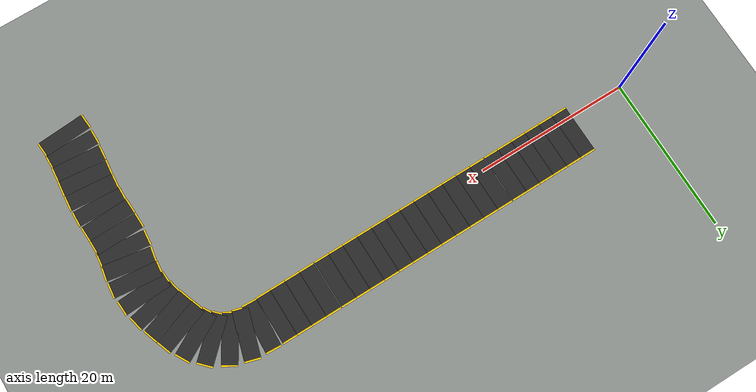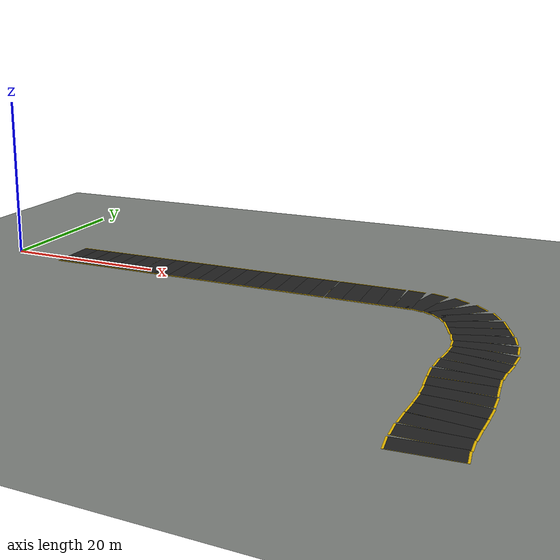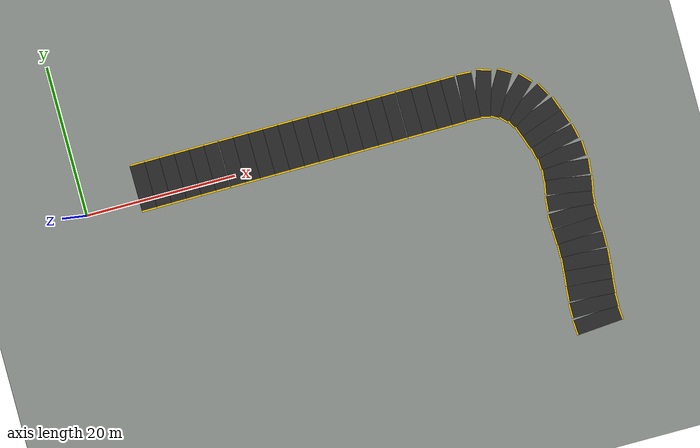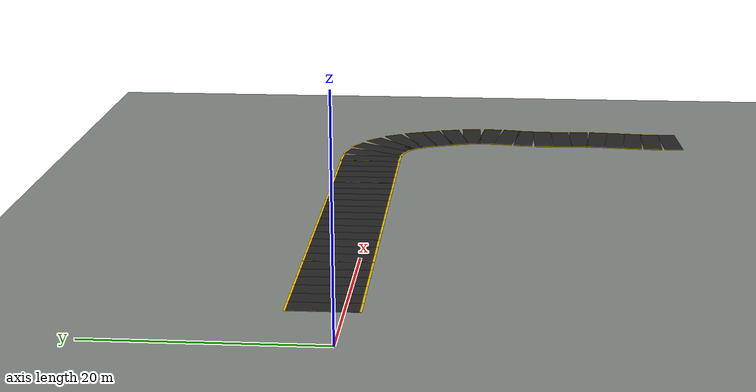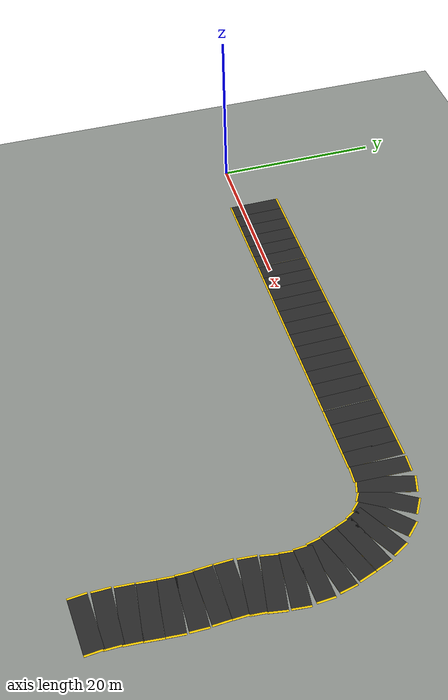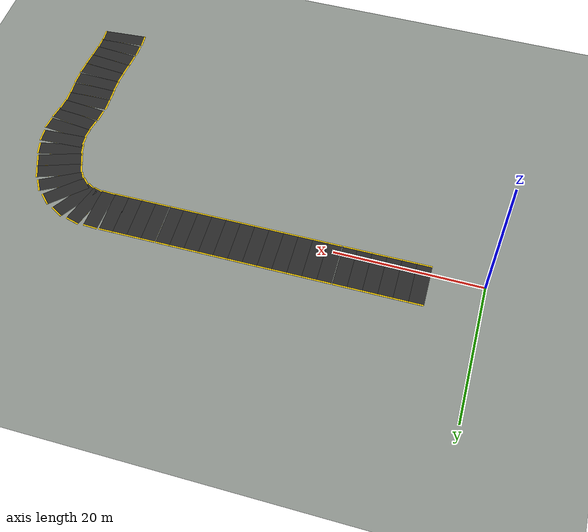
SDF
<sdf version="1.7">
 <world name="custom_road_world">
  <model name="ground_plane">
   <static>true</static>
   <pose>25 -32 -0.005 0 0 0</pose>
   <link name="link">
    <collision name="collision">
     <geometry><plane><normal>0 0 1</normal><size>180 180</size></plane></geometry>
    </collision>
    <visual name="visual">
     <geometry><plane><normal>0 0 1</normal><size>180 180</size></plane></geometry>
     <material>
      <ambient>0.54 0.56 0.54 1</ambient>
      <diffuse>0.54 0.56 0.54 1</diffuse>
      <specular>0.04 0.04 0.04 1</specular>
     </material>
    </visual>
   </link>
  </model>
  <model name="elliptical_road">
   <static>true</static>
   <link name="seg_1">
    <pose>8.089 1.776 0.01 0 0 0.006</pose>
    <visual name="yellow_base_1">
     <pose>0 0 0.001 0 0 0</pose>
     <geometry><box><size>2.0 6.4 0.02</size></box></geometry>
     <material>
      <ambient>1.0 0.8 0.0 1.0</ambient>
      <diffuse>1.0 0.8 0.0 1.0</diffuse>
      <specular>0.1 0.1 0.1 1.0</specular>
     </material>
    </visual>
    <visual name="asphalt_top_1">
     <pose>0 0 0.002 0 0 0</pose>
     <geometry><box><size>2.0 6.0 0.02</size></box></geometry>
     <material>
      <ambient>0.15 0.15 0.15 1.0</ambient>
      <diffuse>0.15 0.15 0.15 1.0</diffuse>
      <specular>0.05 0.05 0.05 1.0</specular>
     </material>
    </visual>
    <visual name="center_line_1">
     <pose>0 0 0.003 0 0 0</pose>
     <geometry><box><size>1.0 0.15 0.001</size></box></geometry>
     <material><ambient>0.9 0.9 0.9 1</ambient><diffuse>0.9 0.9 0.9 1</diffuse></material>
    </visual>
    <collision name="collision_1">
     <pose>0 0 0.002 0 0 0</pose>
     <geometry><box><size>2.0 6.0 0.02</size></box></geometry>
    </collision>
   </link>
   <link name="seg_2">
    <pose>10.089 1.789 0.01 0 0 0.006</pose>
    <visual name="yellow_base_2">
     <pose>0 0 0.001 0 0 0</pose>
     <geometry><box><size>2.0 6.4 0.02</size></box></geometry>
     <material>
      <ambient>1.0 0.8 0.0 1.0</ambient>
      <diffuse>1.0 0.8 0.0 1.0</diffuse>
      <specular>0.1 0.1 0.1 1.0</specular>
     </material>
    </visual>
    <visual name="asphalt_top_2">
     <pose>0 0 0.002 0 0 0</pose>
     <geometry><box><size>2.0 6.0 0.02</size></box></geometry>
     <material>
      <ambient>0.15 0.15 0.15 1.0</ambient>
      <diffuse>0.15 0.15 0.15 1.0</diffuse>
      <specular>0.05 0.05 0.05 1.0</specular>
     </material>
    </visual>
    <visual name="center_line_2">
     <pose>0 0 0.003 0 0 0</pose>
     <geometry><box><size>1.0 0.15 0.001</size></box></geometry>
     <material><ambient>0.9 0.9 0.9 1</ambient><diffuse>0.9 0.9 0.9 1</diffuse></material>
    </visual>
    <collision name="collision_2">
     <pose>0 0 0.002 0 0 0</pose>
     <geometry><box><size>2.0 6.0 0.02</size></box></geometry>
    </collision>
   </link>
   <link name="seg_3">
    <pose>12.089 1.802 0.01 0 0 0.006</pose>
    <visual name="yellow_base_3">
     <pose>0 0 0.001 0 0 0</pose>
     <geometry><box><size>2.0 6.4 0.02</size></box></geometry>
     <material>
      <ambient>1.0 0.8 0.0 1.0</ambient>
      <diffuse>1.0 0.8 0.0 1.0</diffuse>
      <specular>0.1 0.1 0.1 1.0</specular>
     </material>
    </visual>
    <visual name="asphalt_top_3">
     <pose>0 0 0.002 0 0 0</pose>
     <geometry><box><size>2.0 6.0 0.02</size></box></geometry>
     <material>
      <ambient>0.15 0.15 0.15 1.0</ambient>
      <diffuse>0.15 0.15 0.15 1.0</diffuse>
      <specular>0.05 0.05 0.05 1.0</specular>
     </material>
    </visual>
    <visual name="center_line_3">
     <pose>0 0 0.003 0 0 0</pose>
     <geometry><box><size>1.0 0.15 0.001</size></box></geometry>
     <material><ambient>0.9 0.9 0.9 1</ambient><diffuse>0.9 0.9 0.9 1</diffuse></material>
    </visual>
    <collision name="collision_3">
     <pose>0 0 0.002 0 0 0</pose>
     <geometry><box><size>2.0 6.0 0.02</size></box></geometry>
    </collision>
   </link>
   <link name="seg_4">
    <pose>14.089 1.815 0.01 0 0 0.006</pose>
    <visual name="yellow_base_4">
     <pose>0 0 0.001 0 0 0</pose>
     <geometry><box><size>2.0 6.4 0.02</size></box></geometry>
     <material>
      <ambient>1.0 0.8 0.0 1.0</ambient>
      <diffuse>1.0 0.8 0.0 1.0</diffuse>
      <specular>0.1 0.1 0.1 1.0</specular>
     </material>
    </visual>
    <visual name="asphalt_top_4">
     <pose>0 0 0.002 0 0 0</pose>
     <geometry><box><size>2.0 6.0 0.02</size></box></geometry>
     <material>
      <ambient>0.15 0.15 0.15 1.0</ambient>
      <diffuse>0.15 0.15 0.15 1.0</diffuse>
      <specular>0.05 0.05 0.05 1.0</specular>
     </material>
    </visual>
    <visual name="center_line_4">
     <pose>0 0 0.003 0 0 0</pose>
     <geometry><box><size>1.0 0.15 0.001</size></box></geometry>
     <material><ambient>0.9 0.9 0.9 1</ambient><diffuse>0.9 0.9 0.9 1</diffuse></material>
    </visual>
    <collision name="collision_4">
     <pose>0 0 0.002 0 0 0</pose>
     <geometry><box><size>2.0 6.0 0.02</size></box></geometry>
    </collision>
   </link>
   <link name="seg_5">
    <pose>16.088 1.827 0.01 0 0 0.006</pose>
    <visual name="yellow_base_5">
     <pose>0 0 0.001 0 0 0</pose>
     <geometry><box><size>2.0 6.4 0.02</size></box></geometry>
     <material>
      <ambient>1.0 0.8 0.0 1.0</ambient>
      <diffuse>1.0 0.8 0.0 1.0</diffuse>
      <specular>0.1 0.1 0.1 1.0</specular>
     </material>
    </visual>
    <visual name="asphalt_top_5">
     <pose>0 0 0.002 0 0 0</pose>
     <geometry><box><size>2.0 6.0 0.02</size></box></geometry>
     <material>
      <ambient>0.15 0.15 0.15 1.0</ambient>
      <diffuse>0.15 0.15 0.15 1.0</diffuse>
      <specular>0.05 0.05 0.05 1.0</specular>
     </material>
    </visual>
    <visual name="center_line_5">
     <pose>0 0 0.003 0 0 0</pose>
     <geometry><box><size>1.0 0.15 0.001</size></box></geometry>
     <material><ambient>0.9 0.9 0.9 1</ambient><diffuse>0.9 0.9 0.9 1</diffuse></material>
    </visual>
    <collision name="collision_5">
     <pose>0 0 0.002 0 0 0</pose>
     <geometry><box><size>2.0 6.0 0.02</size></box></geometry>
    </collision>
   </link>
   <link name="seg_6">
    <pose>17.988 1.840 0.01 0 0 0.006</pose>
    <visual name="yellow_base_6">
     <pose>0 0 0.001 0 0 0</pose>
     <geometry><box><size>2.0 6.4 0.02</size></box></geometry>
     <material>
      <ambient>1.0 0.8 0.0 1.0</ambient>
      <diffuse>1.0 0.8 0.0 1.0</diffuse>
      <specular>0.1 0.1 0.1 1.0</specular>
     </material>
    </visual>
    <visual name="asphalt_top_6">
     <pose>0 0 0.002 0 0 0</pose>
     <geometry><box><size>2.0 6.0 0.02</size></box></geometry>
     <material>
      <ambient>0.15 0.15 0.15 1.0</ambient>
      <diffuse>0.15 0.15 0.15 1.0</diffuse>
      <specular>0.05 0.05 0.05 1.0</specular>
     </material>
    </visual>
    <visual name="center_line_6">
     <pose>0 0 0.003 0 0 0</pose>
     <geometry><box><size>1.0 0.15 0.001</size></box></geometry>
     <material><ambient>0.9 0.9 0.9 1</ambient><diffuse>0.9 0.9 0.9 1</diffuse></material>
    </visual>
    <collision name="collision_6">
     <pose>0 0 0.002 0 0 0</pose>
     <geometry><box><size>2.0 6.0 0.02</size></box></geometry>
    </collision>
   </link>
   <link name="seg_7">
    <pose>20.088 1.853 0.01 0 0 0.006</pose>
    <visual name="yellow_base_7">
     <pose>0 0 0.001 0 0 0</pose>
     <geometry><box><size>2.0 6.4 0.02</size></box></geometry>
     <material>
      <ambient>1.0 0.8 0.0 1.0</ambient>
      <diffuse>1.0 0.8 0.0 1.0</diffuse>
      <specular>0.1 0.1 0.1 1.0</specular>
     </material>
    </visual>
    <visual name="asphalt_top_7">
     <pose>0 0 0.002 0 0 0</pose>
     <geometry><box><size>2.0 6.0 0.02</size></box></geometry>
     <material>
      <ambient>0.15 0.15 0.15 1.0</ambient>
      <diffuse>0.15 0.15 0.15 1.0</diffuse>
      <specular>0.05 0.05 0.05 1.0</specular>
     </material>
    </visual>
    <visual name="center_line_7">
     <pose>0 0 0.003 0 0 0</pose>
     <geometry><box><size>1.0 0.15 0.001</size></box></geometry>
     <material><ambient>0.9 0.9 0.9 1</ambient><diffuse>0.9 0.9 0.9 1</diffuse></material>
    </visual>
    <collision name="collision_7">
     <pose>0 0 0.002 0 0 0</pose>
     <geometry><box><size>2.0 6.0 0.02</size></box></geometry>
    </collision>
   </link>
   <link name="seg_8">
    <pose>22.088 1.866 0.01 0 0 0.006</pose>
    <visual name="yellow_base_8">
     <pose>0 0 0.001 0 0 0</pose>
     <geometry><box><size>2.0 6.4 0.02</size></box></geometry>
     <material>
      <ambient>1.0 0.8 0.0 1.0</ambient>
      <diffuse>1.0 0.8 0.0 1.0</diffuse>
      <specular>0.1 0.1 0.1 1.0</specular>
     </material>
    </visual>
    <visual name="asphalt_top_8">
     <pose>0 0 0.002 0 0 0</pose>
     <geometry><box><size>2.0 6.0 0.02</size></box></geometry>
     <material>
      <ambient>0.15 0.15 0.15 1.0</ambient>
      <diffuse>0.15 0.15 0.15 1.0</diffuse>
      <specular>0.05 0.05 0.05 1.0</specular>
     </material>
    </visual>
    <visual name="center_line_8">
     <pose>0 0 0.003 0 0 0</pose>
     <geometry><box><size>1.0 0.15 0.001</size></box></geometry>
     <material><ambient>0.9 0.9 0.9 1</ambient><diffuse>0.9 0.9 0.9 1</diffuse></material>
    </visual>
    <collision name="collision_8">
     <pose>0 0 0.002 0 0 0</pose>
     <geometry><box><size>2.0 6.0 0.02</size></box></geometry>
    </collision>
   </link>
   <link name="seg_9">
    <pose>24.088 1.879 0.01 0 0 0.006</pose>
    <visual name="yellow_base_9">
     <pose>0 0 0.001 0 0 0</pose>
     <geometry><box><size>2.0 6.4 0.02</size></box></geometry>
     <material>
      <ambient>1.0 0.8 0.0 1.0</ambient>
      <diffuse>1.0 0.8 0.0 1.0</diffuse>
      <specular>0.1 0.1 0.1 1.0</specular>
     </material>
    </visual>
    <visual name="asphalt_top_9">
     <pose>0 0 0.002 0 0 0</pose>
     <geometry><box><size>2.0 6.0 0.02</size></box></geometry>
     <material>
      <ambient>0.15 0.15 0.15 1.0</ambient>
      <diffuse>0.15 0.15 0.15 1.0</diffuse>
      <specular>0.05 0.05 0.05 1.0</specular>
     </material>
    </visual>
    <visual name="center_line_9">
     <pose>0 0 0.003 0 0 0</pose>
     <geometry><box><size>1.0 0.15 0.001</size></box></geometry>
     <material><ambient>0.9 0.9 0.9 1</ambient><diffuse>0.9 0.9 0.9 1</diffuse></material>
    </visual>
    <collision name="collision_9">
     <pose>0 0 0.002 0 0 0</pose>
     <geometry><box><size>2.0 6.0 0.02</size></box></geometry>
    </collision>
   </link>
   <link name="seg_10">
    <pose>26.088 1.891 0.01 0 0 0.006</pose>
    <visual name="yellow_base_10">
     <pose>0 0 0.001 0 0 0</pose>
     <geometry><box><size>2.0 6.4 0.02</size></box></geometry>
     <material>
      <ambient>1.0 0.8 0.0 1.0</ambient>
      <diffuse>1.0 0.8 0.0 1.0</diffuse>
      <specular>0.1 0.1 0.1 1.0</specular>
     </material>
    </visual>
    <visual name="asphalt_top_10">
     <pose>0 0 0.002 0 0 0</pose>
     <geometry><box><size>2.0 6.0 0.02</size></box></geometry>
     <material>
      <ambient>0.15 0.15 0.15 1.0</ambient>
      <diffuse>0.15 0.15 0.15 1.0</diffuse>
      <specular>0.05 0.05 0.05 1.0</specular>
     </material>
    </visual>
    <visual name="center_line_10">
     <pose>0 0 0.003 0 0 0</pose>
     <geometry><box><size>1.0 0.15 0.001</size></box></geometry>
     <material><ambient>0.9 0.9 0.9 1</ambient><diffuse>0.9 0.9 0.9 1</diffuse></material>
    </visual>
    <collision name="collision_10">
     <pose>0 0 0.002 0 0 0</pose>
     <geometry><box><size>2.0 6.0 0.02</size></box></geometry>
    </collision>
   </link>
   <link name="seg_11">
    <pose>28.088 1.904 0.01 0 0 0.006</pose>
    <visual name="yellow_base_11">
     <pose>0 0 0.001 0 0 0</pose>
     <geometry><box><size>2.0 6.4 0.02</size></box></geometry>
     <material>
      <ambient>1.0 0.8 0.0 1.0</ambient>
      <diffuse>1.0 0.8 0.0 1.0</diffuse>
      <specular>0.1 0.1 0.1 1.0</specular>
     </material>
    </visual>
    <visual name="asphalt_top_11">
     <pose>0 0 0.002 0 0 0</pose>
     <geometry><box><size>2.0 6.0 0.02</size></box></geometry>
     <material>
      <ambient>0.15 0.15 0.15 1.0</ambient>
      <diffuse>0.15 0.15 0.15 1.0</diffuse>
      <specular>0.05 0.05 0.05 1.0</specular>
     </material>
    </visual>
    <visual name="center_line_11">
     <pose>0 0 0.003 0 0 0</pose>
     <geometry><box><size>1.0 0.15 0.001</size></box></geometry>
     <material><ambient>0.9 0.9 0.9 1</ambient><diffuse>0.9 0.9 0.9 1</diffuse></material>
    </visual>
    <collision name="collision_11">
     <pose>0 0 0.002 0 0 0</pose>
     <geometry><box><size>2.0 6.0 0.02</size></box></geometry>
    </collision>
   </link>
   <link name="seg_12">
    <pose>30.088 1.917 0.01 0 0 0.006</pose>
    <visual name="yellow_base_12">
     <pose>0 0 0.001 0 0 0</pose>
     <geometry><box><size>2.0 6.4 0.02</size></box></geometry>
     <material>
      <ambient>1.0 0.8 0.0 1.0</ambient>
      <diffuse>1.0 0.8 0.0 1.0</diffuse>
      <specular>0.1 0.1 0.1 1.0</specular>
     </material>
    </visual>
    <visual name="asphalt_top_12">
     <pose>0 0 0.002 0 0 0</pose>
     <geometry><box><size>2.0 6.0 0.02</size></box></geometry>
     <material>
      <ambient>0.15 0.15 0.15 1.0</ambient>
      <diffuse>0.15 0.15 0.15 1.0</diffuse>
      <specular>0.05 0.05 0.05 1.0</specular>
     </material>
    </visual>
    <visual name="center_line_12">
     <pose>0 0 0.003 0 0 0</pose>
     <geometry><box><size>1.0 0.15 0.001</size></box></geometry>
     <material><ambient>0.9 0.9 0.9 1</ambient><diffuse>0.9 0.9 0.9 1</diffuse></material>
    </visual>
    <collision name="collision_12">
     <pose>0 0 0.002 0 0 0</pose>
     <geometry><box><size>2.0 6.0 0.02</size></box></geometry>
    </collision>
   </link>
   <link name="seg_13">
    <pose>32.088 1.930 0.01 0 0 0.006</pose>
    <visual name="yellow_base_13">
     <pose>0 0 0.001 0 0 0</pose>
     <geometry><box><size>2.0 6.4 0.02</size></box></geometry>
     <material>
      <ambient>1.0 0.8 0.0 1.0</ambient>
      <diffuse>1.0 0.8 0.0 1.0</diffuse>
      <specular>0.1 0.1 0.1 1.0</specular>
     </material>
    </visual>
    <visual name="asphalt_top_13">
     <pose>0 0 0.002 0 0 0</pose>
     <geometry><box><size>2.0 6.0 0.02</size></box></geometry>
     <material>
      <ambient>0.15 0.15 0.15 1.0</ambient>
      <diffuse>0.15 0.15 0.15 1.0</diffuse>
      <specular>0.05 0.05 0.05 1.0</specular>
     </material>
    </visual>
    <visual name="center_line_13">
     <pose>0 0 0.003 0 0 0</pose>
     <geometry><box><size>1.0 0.15 0.001</size></box></geometry>
     <material><ambient>0.9 0.9 0.9 1</ambient><diffuse>0.9 0.9 0.9 1</diffuse></material>
    </visual>
    <collision name="collision_13">
     <pose>0 0 0.002 0 0 0</pose>
     <geometry><box><size>2.0 6.0 0.02</size></box></geometry>
    </collision>
   </link>
   <link name="seg_14">
    <pose>34.088 1.943 0.01 0 0 0.006</pose>
    <visual name="yellow_base_14">
     <pose>0 0 0.001 0 0 0</pose>
     <geometry><box><size>2.0 6.4 0.02</size></box></geometry>
     <material>
      <ambient>1.0 0.8 0.0 1.0</ambient>
      <diffuse>1.0 0.8 0.0 1.0</diffuse>
      <specular>0.1 0.1 0.1 1.0</specular>
     </material>
    </visual>
    <visual name="asphalt_top_14">
     <pose>0 0 0.002 0 0 0</pose>
     <geometry><box><size>2.0 6.0 0.02</size></box></geometry>
     <material>
      <ambient>0.15 0.15 0.15 1.0</ambient>
      <diffuse>0.15 0.15 0.15 1.0</diffuse>
      <specular>0.05 0.05 0.05 1.0</specular>
     </material>
    </visual>
    <visual name="center_line_14">
     <pose>0 0 0.003 0 0 0</pose>
     <geometry><box><size>1.0 0.15 0.001</size></box></geometry>
     <material><ambient>0.9 0.9 0.9 1</ambient><diffuse>0.9 0.9 0.9 1</diffuse></material>
    </visual>
    <collision name="collision_14">
     <pose>0 0 0.002 0 0 0</pose>
     <geometry><box><size>2.0 6.0 0.02</size></box></geometry>
    </collision>
   </link>
   <link name="seg_15">
    <pose>36.088 1.956 0.01 0 0 0.006</pose>
    <visual name="yellow_base_15">
     <pose>0 0 0.001 0 0 0</pose>
     <geometry><box><size>2.0 6.4 0.02</size></box></geometry>
     <material>
      <ambient>1.0 0.8 0.0 1.0</ambient>
      <diffuse>1.0 0.8 0.0 1.0</diffuse>
      <specular>0.1 0.1 0.1 1.0</specular>
     </material>
    </visual>
    <visual name="asphalt_top_15">
     <pose>0 0 0.002 0 0 0</pose>
     <geometry><box><size>2.0 6.0 0.02</size></box></geometry>
     <material>
      <ambient>0.15 0.15 0.15 1.0</ambient>
      <diffuse>0.15 0.15 0.15 1.0</diffuse>
      <specular>0.05 0.05 0.05 1.0</specular>
     </material>
    </visual>
    <visual name="center_line_15">
     <pose>0 0 0.003 0 0 0</pose>
     <geometry><box><size>1.0 0.15 0.001</size></box></geometry>
     <material><ambient>0.9 0.9 0.9 1</ambient><diffuse>0.9 0.9 0.9 1</diffuse></material>
    </visual>
    <collision name="collision_15">
     <pose>0 0 0.002 0 0 0</pose>
     <geometry><box><size>2.0 6.0 0.02</size></box></geometry>
    </collision>
   </link>
   <link name="seg_16">
    <pose>38.088 1.968 0.01 0 0 0.006</pose>
    <visual name="yellow_base_16">
     <pose>0 0 0.001 0 0 0</pose>
     <geometry><box><size>2.0 6.4 0.02</size></box></geometry>
     <material>
      <ambient>1.0 0.8 0.0 1.0</ambient>
      <diffuse>1.0 0.8 0.0 1.0</diffuse>
      <specular>0.1 0.1 0.1 1.0</specular>
     </material>
    </visual>
    <visual name="asphalt_top_16">
     <pose>0 0 0.002 0 0 0</pose>
     <geometry><box><size>2.0 6.0 0.02</size></box></geometry>
     <material>
      <ambient>0.15 0.15 0.15 1.0</ambient>
      <diffuse>0.15 0.15 0.15 1.0</diffuse>
      <specular>0.05 0.05 0.05 1.0</specular>
     </material>
    </visual>
    <visual name="center_line_16">
     <pose>0 0 0.003 0 0 0</pose>
     <geometry><box><size>1.0 0.15 0.001</size></box></geometry>
     <material><ambient>0.9 0.9 0.9 1</ambient><diffuse>0.9 0.9 0.9 1</diffuse></material>
    </visual>
    <collision name="collision_16">
     <pose>0 0 0.002 0 0 0</pose>
     <geometry><box><size>2.0 6.0 0.02</size></box></geometry>
    </collision>
   </link>
   <link name="seg_17">
    <pose>40.088 1.981 0.01 0 0 0.006</pose>
    <visual name="yellow_base_17">
     <pose>0 0 0.001 0 0 0</pose>
     <geometry><box><size>2.0 6.4 0.02</size></box></geometry>
     <material>
      <ambient>1.0 0.8 0.0 1.0</ambient>
      <diffuse>1.0 0.8 0.0 1.0</diffuse>
      <specular>0.1 0.1 0.1 1.0</specular>
     </material>
    </visual>
    <visual name="asphalt_top_17">
     <pose>0 0 0.002 0 0 0</pose>
     <geometry><box><size>2.0 6.0 0.02</size></box></geometry>
     <material>
      <ambient>0.15 0.15 0.15 1.0</ambient>
      <diffuse>0.15 0.15 0.15 1.0</diffuse>
      <specular>0.05 0.05 0.05 1.0</specular>
     </material>
    </visual>
    <visual name="center_line_17">
     <pose>0 0 0.003 0 0 0</pose>
     <geometry><box><size>1.0 0.15 0.001</size></box></geometry>
     <material><ambient>0.9 0.9 0.9 1</ambient><diffuse>0.9 0.9 0.9 1</diffuse></material>
    </visual>
    <collision name="collision_17">
     <pose>0 0 0.002 0 0 0</pose>
     <geometry><box><size>2.0 6.0 0.02</size></box></geometry>
    </collision>
   </link>
   <link name="seg_18">
    <pose>41.988 1.993 0.01 0 0 0.006</pose>
    <visual name="yellow_base_18">
     <pose>0 0 0.001 0 0 0</pose>
     <geometry><box><size>2.0 6.4 0.02</size></box></geometry>
     <material>
      <ambient>1.0 0.8 0.0 1.0</ambient>
      <diffuse>1.0 0.8 0.0 1.0</diffuse>
      <specular>0.1 0.1 0.1 1.0</specular>
     </material>
    </visual>
    <visual name="asphalt_top_18">
     <pose>0 0 0.002 0 0 0</pose>
     <geometry><box><size>2.0 6.0 0.02</size></box></geometry>
     <material>
      <ambient>0.15 0.15 0.15 1.0</ambient>
      <diffuse>0.15 0.15 0.15 1.0</diffuse>
      <specular>0.05 0.05 0.05 1.0</specular>
     </material>
    </visual>
    <visual name="center_line_18">
     <pose>0 0 0.003 0 0 0</pose>
     <geometry><box><size>1.0 0.15 0.001</size></box></geometry>
     <material><ambient>0.9 0.9 0.9 1</ambient><diffuse>0.9 0.9 0.9 1</diffuse></material>
    </visual>
    <collision name="collision_18">
     <pose>0 0 0.002 0 0 0</pose>
     <geometry><box><size>2.0 6.0 0.02</size></box></geometry>
    </collision>
   </link>
   <link name="seg_19">
    <pose>44.088 2.007 0.01 0 0 0.006</pose>
    <visual name="yellow_base_19">
     <pose>0 0 0.001 0 0 0</pose>
     <geometry><box><size>2.0 6.4 0.02</size></box></geometry>
     <material>
      <ambient>1.0 0.8 0.0 1.0</ambient>
      <diffuse>1.0 0.8 0.0 1.0</diffuse>
      <specular>0.1 0.1 0.1 1.0</specular>
     </material>
    </visual>
    <visual name="asphalt_top_19">
     <pose>0 0 0.002 0 0 0</pose>
     <geometry><box><size>2.0 6.0 0.02</size></box></geometry>
     <material>
      <ambient>0.15 0.15 0.15 1.0</ambient>
      <diffuse>0.15 0.15 0.15 1.0</diffuse>
      <specular>0.05 0.05 0.05 1.0</specular>
     </material>
    </visual>
    <visual name="center_line_19">
     <pose>0 0 0.003 0 0 0</pose>
     <geometry><box><size>1.0 0.15 0.001</size></box></geometry>
     <material><ambient>0.9 0.9 0.9 1</ambient><diffuse>0.9 0.9 0.9 1</diffuse></material>
    </visual>
    <collision name="collision_19">
     <pose>0 0 0.002 0 0 0</pose>
     <geometry><box><size>2.0 6.0 0.02</size></box></geometry>
    </collision>
   </link>
   <link name="seg_20">
    <pose>46.088 2.020 0.01 0 0 0.006</pose>
    <visual name="yellow_base_20">
     <pose>0 0 0.001 0 0 0</pose>
     <geometry><box><size>2.0 6.4 0.02</size></box></geometry>
     <material>
      <ambient>1.0 0.8 0.0 1.0</ambient>
      <diffuse>1.0 0.8 0.0 1.0</diffuse>
      <specular>0.1 0.1 0.1 1.0</specular>
     </material>
    </visual>
    <visual name="asphalt_top_20">
     <pose>0 0 0.002 0 0 0</pose>
     <geometry><box><size>2.0 6.0 0.02</size></box></geometry>
     <material>
      <ambient>0.15 0.15 0.15 1.0</ambient>
      <diffuse>0.15 0.15 0.15 1.0</diffuse>
      <specular>0.05 0.05 0.05 1.0</specular>
     </material>
    </visual>
    <visual name="center_line_20">
     <pose>0 0 0.003 0 0 0</pose>
     <geometry><box><size>1.0 0.15 0.001</size></box></geometry>
     <material><ambient>0.9 0.9 0.9 1</ambient><diffuse>0.9 0.9 0.9 1</diffuse></material>
    </visual>
    <collision name="collision_20">
     <pose>0 0 0.002 0 0 0</pose>
     <geometry><box><size>2.0 6.0 0.02</size></box></geometry>
    </collision>
   </link>
   <link name="seg_21">
    <pose>48.088 2.032 0.01 0 0 0.006</pose>
    <visual name="yellow_base_21">
     <pose>0 0 0.001 0 0 0</pose>
     <geometry><box><size>2.0 6.4 0.02</size></box></geometry>
     <material>
      <ambient>1.0 0.8 0.0 1.0</ambient>
      <diffuse>1.0 0.8 0.0 1.0</diffuse>
      <specular>0.1 0.1 0.1 1.0</specular>
     </material>
    </visual>
    <visual name="asphalt_top_21">
     <pose>0 0 0.002 0 0 0</pose>
     <geometry><box><size>2.0 6.0 0.02</size></box></geometry>
     <material>
      <ambient>0.15 0.15 0.15 1.0</ambient>
      <diffuse>0.15 0.15 0.15 1.0</diffuse>
      <specular>0.05 0.05 0.05 1.0</specular>
     </material>
    </visual>
    <visual name="center_line_21">
     <pose>0 0 0.003 0 0 0</pose>
     <geometry><box><size>1.0 0.15 0.001</size></box></geometry>
     <material><ambient>0.9 0.9 0.9 1</ambient><diffuse>0.9 0.9 0.9 1</diffuse></material>
    </visual>
    <collision name="collision_21">
     <pose>0 0 0.002 0 0 0</pose>
     <geometry><box><size>2.0 6.0 0.02</size></box></geometry>
    </collision>
   </link>
   <link name="seg_22">
    <pose>49.988 2.045 0.01 0 0 0.006</pose>
    <visual name="yellow_base_22">
     <pose>0 0 0.001 0 0 0</pose>
     <geometry><box><size>2.0 6.4 0.02</size></box></geometry>
     <material>
      <ambient>1.0 0.8 0.0 1.0</ambient>
      <diffuse>1.0 0.8 0.0 1.0</diffuse>
      <specular>0.1 0.1 0.1 1.0</specular>
     </material>
    </visual>
    <visual name="asphalt_top_22">
     <pose>0 0 0.002 0 0 0</pose>
     <geometry><box><size>2.0 6.0 0.02</size></box></geometry>
     <material>
      <ambient>0.15 0.15 0.15 1.0</ambient>
      <diffuse>0.15 0.15 0.15 1.0</diffuse>
      <specular>0.05 0.05 0.05 1.0</specular>
     </material>
    </visual>
    <visual name="center_line_22">
     <pose>0 0 0.003 0 0 0</pose>
     <geometry><box><size>1.0 0.15 0.001</size></box></geometry>
     <material><ambient>0.9 0.9 0.9 1</ambient><diffuse>0.9 0.9 0.9 1</diffuse></material>
    </visual>
    <collision name="collision_22">
     <pose>0 0 0.002 0 0 0</pose>
     <geometry><box><size>2.0 6.0 0.02</size></box></geometry>
    </collision>
   </link>
   <link name="seg_23">
    <pose>52.089 2.058 0.01 0 0 -0.053</pose>
    <visual name="yellow_base_23">
     <pose>0 0 0.001 0 0 0</pose>
     <geometry><box><size>2.0 6.4 0.02</size></box></geometry>
     <material>
      <ambient>1.0 0.8 0.0 1.0</ambient>
      <diffuse>1.0 0.8 0.0 1.0</diffuse>
      <specular>0.1 0.1 0.1 1.0</specular>
     </material>
    </visual>
    <visual name="asphalt_top_23">
     <pose>0 0 0.002 0 0 0</pose>
     <geometry><box><size>2.0 6.0 0.02</size></box></geometry>
     <material>
      <ambient>0.15 0.15 0.15 1.0</ambient>
      <diffuse>0.15 0.15 0.15 1.0</diffuse>
      <specular>0.05 0.05 0.05 1.0</specular>
     </material>
    </visual>
    <visual name="center_line_23">
     <pose>0 0 0.003 0 0 0</pose>
     <geometry><box><size>1.0 0.15 0.001</size></box></geometry>
     <material><ambient>0.9 0.9 0.9 1</ambient><diffuse>0.9 0.9 0.9 1</diffuse></material>
    </visual>
    <collision name="collision_23">
     <pose>0 0 0.002 0 0 0</pose>
     <geometry><box><size>2.0 6.0 0.02</size></box></geometry>
    </collision>
   </link>
   <link name="seg_24">
    <pose>54.062 1.953 0.01 0 0 -0.279</pose>
    <visual name="yellow_base_24">
     <pose>0 0 0.001 0 0 0</pose>
     <geometry><box><size>2.0 6.4 0.02</size></box></geometry>
     <material>
      <ambient>1.0 0.8 0.0 1.0</ambient>
      <diffuse>1.0 0.8 0.0 1.0</diffuse>
      <specular>0.1 0.1 0.1 1.0</specular>
     </material>
    </visual>
    <visual name="asphalt_top_24">
     <pose>0 0 0.002 0 0 0</pose>
     <geometry><box><size>2.0 6.0 0.02</size></box></geometry>
     <material>
      <ambient>0.15 0.15 0.15 1.0</ambient>
      <diffuse>0.15 0.15 0.15 1.0</diffuse>
      <specular>0.05 0.05 0.05 1.0</specular>
     </material>
    </visual>
    <visual name="center_line_24">
     <pose>0 0 0.003 0 0 0</pose>
     <geometry><box><size>1.0 0.15 0.001</size></box></geometry>
     <material><ambient>0.9 0.9 0.9 1</ambient><diffuse>0.9 0.9 0.9 1</diffuse></material>
    </visual>
    <collision name="collision_24">
     <pose>0 0 0.002 0 0 0</pose>
     <geometry><box><size>2.0 6.0 0.02</size></box></geometry>
    </collision>
   </link>
   <link name="seg_25">
    <pose>55.924 1.419 0.01 0 0 -0.540</pose>
    <visual name="yellow_base_25">
     <pose>0 0 0.001 0 0 0</pose>
     <geometry><box><size>2.0 6.4 0.02</size></box></geometry>
     <material>
      <ambient>1.0 0.8 0.0 1.0</ambient>
      <diffuse>1.0 0.8 0.0 1.0</diffuse>
      <specular>0.1 0.1 0.1 1.0</specular>
     </material>
    </visual>
    <visual name="asphalt_top_25">
     <pose>0 0 0.002 0 0 0</pose>
     <geometry><box><size>2.0 6.0 0.02</size></box></geometry>
     <material>
      <ambient>0.15 0.15 0.15 1.0</ambient>
      <diffuse>0.15 0.15 0.15 1.0</diffuse>
      <specular>0.05 0.05 0.05 1.0</specular>
     </material>
    </visual>
    <visual name="center_line_25">
     <pose>0 0 0.003 0 0 0</pose>
     <geometry><box><size>1.0 0.15 0.001</size></box></geometry>
     <material><ambient>0.9 0.9 0.9 1</ambient><diffuse>0.9 0.9 0.9 1</diffuse></material>
    </visual>
    <collision name="collision_25">
     <pose>0 0 0.002 0 0 0</pose>
     <geometry><box><size>2.0 6.0 0.02</size></box></geometry>
    </collision>
   </link>
   <link name="seg_26">
    <pose>57.695 0.356 0.01 0 0 -0.802</pose>
    <visual name="yellow_base_26">
     <pose>0 0 0.001 0 0 0</pose>
     <geometry><box><size>2.0 6.4 0.02</size></box></geometry>
     <material>
      <ambient>1.0 0.8 0.0 1.0</ambient>
      <diffuse>1.0 0.8 0.0 1.0</diffuse>
      <specular>0.1 0.1 0.1 1.0</specular>
     </material>
    </visual>
    <visual name="asphalt_top_26">
     <pose>0 0 0.002 0 0 0</pose>
     <geometry><box><size>2.0 6.0 0.02</size></box></geometry>
     <material>
      <ambient>0.15 0.15 0.15 1.0</ambient>
      <diffuse>0.15 0.15 0.15 1.0</diffuse>
      <specular>0.05 0.05 0.05 1.0</specular>
     </material>
    </visual>
    <visual name="center_line_26">
     <pose>0 0 0.003 0 0 0</pose>
     <geometry><box><size>1.0 0.15 0.001</size></box></geometry>
     <material><ambient>0.9 0.9 0.9 1</ambient><diffuse>0.9 0.9 0.9 1</diffuse></material>
    </visual>
    <collision name="collision_26">
     <pose>0 0 0.002 0 0 0</pose>
     <geometry><box><size>2.0 6.0 0.02</size></box></geometry>
    </collision>
   </link>
   <link name="seg_27">
    <pose>59.042 -1.036 0.01 0 0 -1.058</pose>
    <visual name="yellow_base_27">
     <pose>0 0 0.001 0 0 0</pose>
     <geometry><box><size>2.0 6.4 0.02</size></box></geometry>
     <material>
      <ambient>1.0 0.8 0.0 1.0</ambient>
      <diffuse>1.0 0.8 0.0 1.0</diffuse>
      <specular>0.1 0.1 0.1 1.0</specular>
     </material>
    </visual>
    <visual name="asphalt_top_27">
     <pose>0 0 0.002 0 0 0</pose>
     <geometry><box><size>2.0 6.0 0.02</size></box></geometry>
     <material>
      <ambient>0.15 0.15 0.15 1.0</ambient>
      <diffuse>0.15 0.15 0.15 1.0</diffuse>
      <specular>0.05 0.05 0.05 1.0</specular>
     </material>
    </visual>
    <visual name="center_line_27">
     <pose>0 0 0.003 0 0 0</pose>
     <geometry><box><size>1.0 0.15 0.001</size></box></geometry>
     <material><ambient>0.9 0.9 0.9 1</ambient><diffuse>0.9 0.9 0.9 1</diffuse></material>
    </visual>
    <collision name="collision_27">
     <pose>0 0 0.002 0 0 0</pose>
     <geometry><box><size>2.0 6.0 0.02</size></box></geometry>
    </collision>
   </link>
   <link name="seg_28">
    <pose>60.037 -2.804 0.01 0 0 -1.220</pose>
    <visual name="yellow_base_28">
     <pose>0 0 0.001 0 0 0</pose>
     <geometry><box><size>2.0 6.4 0.02</size></box></geometry>
     <material>
      <ambient>1.0 0.8 0.0 1.0</ambient>
      <diffuse>1.0 0.8 0.0 1.0</diffuse>
      <specular>0.1 0.1 0.1 1.0</specular>
     </material>
    </visual>
    <visual name="asphalt_top_28">
     <pose>0 0 0.002 0 0 0</pose>
     <geometry><box><size>2.0 6.0 0.02</size></box></geometry>
     <material>
      <ambient>0.15 0.15 0.15 1.0</ambient>
      <diffuse>0.15 0.15 0.15 1.0</diffuse>
      <specular>0.05 0.05 0.05 1.0</specular>
     </material>
    </visual>
    <visual name="center_line_28">
     <pose>0 0 0.003 0 0 0</pose>
     <geometry><box><size>1.0 0.15 0.001</size></box></geometry>
     <material><ambient>0.9 0.9 0.9 1</ambient><diffuse>0.9 0.9 0.9 1</diffuse></material>
    </visual>
    <collision name="collision_28">
     <pose>0 0 0.002 0 0 0</pose>
     <geometry><box><size>2.0 6.0 0.02</size></box></geometry>
    </collision>
   </link>
   <link name="seg_29">
    <pose>60.723 -4.677 0.01 0 0 -1.238</pose>
    <visual name="yellow_base_29">
     <pose>0 0 0.001 0 0 0</pose>
     <geometry><box><size>2.0 6.4 0.02</size></box></geometry>
     <material>
      <ambient>1.0 0.8 0.0 1.0</ambient>
      <diffuse>1.0 0.8 0.0 1.0</diffuse>
      <specular>0.1 0.1 0.1 1.0</specular>
     </material>
    </visual>
    <visual name="asphalt_top_29">
     <pose>0 0 0.002 0 0 0</pose>
     <geometry><box><size>2.0 6.0 0.02</size></box></geometry>
     <material>
      <ambient>0.15 0.15 0.15 1.0</ambient>
      <diffuse>0.15 0.15 0.15 1.0</diffuse>
      <specular>0.05 0.05 0.05 1.0</specular>
     </material>
    </visual>
    <visual name="center_line_29">
     <pose>0 0 0.003 0 0 0</pose>
     <geometry><box><size>1.0 0.15 0.001</size></box></geometry>
     <material><ambient>0.9 0.9 0.9 1</ambient><diffuse>0.9 0.9 0.9 1</diffuse></material>
    </visual>
    <collision name="collision_29">
     <pose>0 0 0.002 0 0 0</pose>
     <geometry><box><size>2.0 6.0 0.02</size></box></geometry>
    </collision>
   </link>
   <link name="seg_30">
    <pose>61.367 -6.536 0.01 0 0 -1.350</pose>
    <visual name="yellow_base_30">
     <pose>0 0 0.001 0 0 0</pose>
     <geometry><box><size>2.0 6.4 0.02</size></box></geometry>
     <material>
      <ambient>1.0 0.8 0.0 1.0</ambient>
      <diffuse>1.0 0.8 0.0 1.0</diffuse>
      <specular>0.1 0.1 0.1 1.0</specular>
     </material>
    </visual>
    <visual name="asphalt_top_30">
     <pose>0 0 0.002 0 0 0</pose>
     <geometry><box><size>2.0 6.0 0.02</size></box></geometry>
     <material>
      <ambient>0.15 0.15 0.15 1.0</ambient>
      <diffuse>0.15 0.15 0.15 1.0</diffuse>
      <specular>0.05 0.05 0.05 1.0</specular>
     </material>
    </visual>
    <visual name="center_line_30">
     <pose>0 0 0.003 0 0 0</pose>
     <geometry><box><size>1.0 0.15 0.001</size></box></geometry>
     <material><ambient>0.9 0.9 0.9 1</ambient><diffuse>0.9 0.9 0.9 1</diffuse></material>
    </visual>
    <collision name="collision_30">
     <pose>0 0 0.002 0 0 0</pose>
     <geometry><box><size>2.0 6.0 0.02</size></box></geometry>
    </collision>
   </link>
   <link name="seg_31">
    <pose>61.802 -8.470 0.01 0 0 -1.514</pose>
    <visual name="yellow_base_31">
     <pose>0 0 0.001 0 0 0</pose>
     <geometry><box><size>2.0 6.4 0.02</size></box></geometry>
     <material>
      <ambient>1.0 0.8 0.0 1.0</ambient>
      <diffuse>1.0 0.8 0.0 1.0</diffuse>
      <specular>0.1 0.1 0.1 1.0</specular>
     </material>
    </visual>
    <visual name="asphalt_top_31">
     <pose>0 0 0.002 0 0 0</pose>
     <geometry><box><size>2.0 6.0 0.02</size></box></geometry>
     <material>
      <ambient>0.15 0.15 0.15 1.0</ambient>
      <diffuse>0.15 0.15 0.15 1.0</diffuse>
      <specular>0.05 0.05 0.05 1.0</specular>
     </material>
    </visual>
    <visual name="center_line_31">
     <pose>0 0 0.003 0 0 0</pose>
     <geometry><box><size>1.0 0.15 0.001</size></box></geometry>
     <material><ambient>0.9 0.9 0.9 1</ambient><diffuse>0.9 0.9 0.9 1</diffuse></material>
    </visual>
    <collision name="collision_31">
     <pose>0 0 0.002 0 0 0</pose>
     <geometry><box><size>2.0 6.0 0.02</size></box></geometry>
    </collision>
   </link>
   <link name="seg_32">
    <pose>61.914 -10.453 0.01 0 0 -1.678</pose>
    <visual name="yellow_base_32">
     <pose>0 0 0.001 0 0 0</pose>
     <geometry><box><size>2.0 6.4 0.02</size></box></geometry>
     <material>
      <ambient>1.0 0.8 0.0 1.0</ambient>
      <diffuse>1.0 0.8 0.0 1.0</diffuse>
      <specular>0.1 0.1 0.1 1.0</specular>
     </material>
    </visual>
    <visual name="asphalt_top_32">
     <pose>0 0 0.002 0 0 0</pose>
     <geometry><box><size>2.0 6.0 0.02</size></box></geometry>
     <material>
      <ambient>0.15 0.15 0.15 1.0</ambient>
      <diffuse>0.15 0.15 0.15 1.0</diffuse>
      <specular>0.05 0.05 0.05 1.0</specular>
     </material>
    </visual>
    <visual name="center_line_32">
     <pose>0 0 0.003 0 0 0</pose>
     <geometry><box><size>1.0 0.15 0.001</size></box></geometry>
     <material><ambient>0.9 0.9 0.9 1</ambient><diffuse>0.9 0.9 0.9 1</diffuse></material>
    </visual>
    <collision name="collision_32">
     <pose>0 0 0.002 0 0 0</pose>
     <geometry><box><size>2.0 6.0 0.02</size></box></geometry>
    </collision>
   </link>
   <link name="seg_33">
    <pose>61.696 -12.492 0.01 0 0 -1.740</pose>
    <visual name="yellow_base_33">
     <pose>0 0 0.001 0 0 0</pose>
     <geometry><box><size>2.0 6.4 0.02</size></box></geometry>
     <material>
      <ambient>1.0 0.8 0.0 1.0</ambient>
      <diffuse>1.0 0.8 0.0 1.0</diffuse>
      <specular>0.1 0.1 0.1 1.0</specular>
     </material>
    </visual>
    <visual name="asphalt_top_33">
     <pose>0 0 0.002 0 0 0</pose>
     <geometry><box><size>2.0 6.0 0.02</size></box></geometry>
     <material>
      <ambient>0.15 0.15 0.15 1.0</ambient>
      <diffuse>0.15 0.15 0.15 1.0</diffuse>
      <specular>0.05 0.05 0.05 1.0</specular>
     </material>
    </visual>
    <visual name="center_line_33">
     <pose>0 0 0.003 0 0 0</pose>
     <geometry><box><size>1.0 0.15 0.001</size></box></geometry>
     <material><ambient>0.9 0.9 0.9 1</ambient><diffuse>0.9 0.9 0.9 1</diffuse></material>
    </visual>
    <collision name="collision_33">
     <pose>0 0 0.002 0 0 0</pose>
     <geometry><box><size>2.0 6.0 0.02</size></box></geometry>
    </collision>
   </link>
   <link name="seg_34">
    <pose>61.367 -14.419 0.01 0 0 -1.657</pose>
    <visual name="yellow_base_34">
     <pose>0 0 0.001 0 0 0</pose>
     <geometry><box><size>2.0 6.4 0.02</size></box></geometry>
     <material>
      <ambient>1.0 0.8 0.0 1.0</ambient>
      <diffuse>1.0 0.8 0.0 1.0</diffuse>
      <specular>0.1 0.1 0.1 1.0</specular>
     </material>
    </visual>
    <visual name="asphalt_top_34">
     <pose>0 0 0.002 0 0 0</pose>
     <geometry><box><size>2.0 6.0 0.02</size></box></geometry>
     <material>
      <ambient>0.15 0.15 0.15 1.0</ambient>
      <diffuse>0.15 0.15 0.15 1.0</diffuse>
      <specular>0.05 0.05 0.05 1.0</specular>
     </material>
    </visual>
    <visual name="center_line_34">
     <pose>0 0 0.003 0 0 0</pose>
     <geometry><box><size>1.0 0.15 0.001</size></box></geometry>
     <material><ambient>0.9 0.9 0.9 1</ambient><diffuse>0.9 0.9 0.9 1</diffuse></material>
    </visual>
    <collision name="collision_34">
     <pose>0 0 0.002 0 0 0</pose>
     <geometry><box><size>2.0 6.0 0.02</size></box></geometry>
    </collision>
   </link>
   <link name="seg_35">
    <pose>61.196 -16.406 0.01 0 0 -1.543</pose>
    <visual name="yellow_base_35">
     <pose>0 0 0.001 0 0 0</pose>
     <geometry><box><size>2.0 6.4 0.02</size></box></geometry>
     <material>
      <ambient>1.0 0.8 0.0 1.0</ambient>
      <diffuse>1.0 0.8 0.0 1.0</diffuse>
      <specular>0.1 0.1 0.1 1.0</specular>
     </material>
    </visual>
    <visual name="asphalt_top_35">
     <pose>0 0 0.002 0 0 0</pose>
     <geometry><box><size>2.0 6.0 0.02</size></box></geometry>
     <material>
      <ambient>0.15 0.15 0.15 1.0</ambient>
      <diffuse>0.15 0.15 0.15 1.0</diffuse>
      <specular>0.05 0.05 0.05 1.0</specular>
     </material>
    </visual>
    <visual name="center_line_35">
     <pose>0 0 0.003 0 0 0</pose>
     <geometry><box><size>1.0 0.15 0.001</size></box></geometry>
     <material><ambient>0.9 0.9 0.9 1</ambient><diffuse>0.9 0.9 0.9 1</diffuse></material>
    </visual>
    <collision name="collision_35">
     <pose>0 0 0.002 0 0 0</pose>
     <geometry><box><size>2.0 6.0 0.02</size></box></geometry>
    </collision>
   </link>
   <link name="seg_36">
    <pose>61.253 -18.443 0.01 0 0 -1.524</pose>
    <visual name="yellow_base_36">
     <pose>0 0 0.001 0 0 0</pose>
     <geometry><box><size>2.0 6.4 0.02</size></box></geometry>
     <material>
      <ambient>1.0 0.8 0.0 1.0</ambient>
      <diffuse>1.0 0.8 0.0 1.0</diffuse>
      <specular>0.1 0.1 0.1 1.0</specular>
     </material>
    </visual>
    <visual name="asphalt_top_36">
     <pose>0 0 0.002 0 0 0</pose>
     <geometry><box><size>2.0 6.0 0.02</size></box></geometry>
     <material>
      <ambient>0.15 0.15 0.15 1.0</ambient>
      <diffuse>0.15 0.15 0.15 1.0</diffuse>
      <specular>0.05 0.05 0.05 1.0</specular>
     </material>
    </visual>
    <visual name="center_line_36">
     <pose>0 0 0.003 0 0 0</pose>
     <geometry><box><size>1.0 0.15 0.001</size></box></geometry>
     <material><ambient>0.9 0.9 0.9 1</ambient><diffuse>0.9 0.9 0.9 1</diffuse></material>
    </visual>
    <collision name="collision_36">
     <pose>0 0 0.002 0 0 0</pose>
     <geometry><box><size>2.0 6.0 0.02</size></box></geometry>
    </collision>
   </link>
   <link name="seg_37">
    <pose>61.346 -20.426 0.01 0 0 -1.590</pose>
    <visual name="yellow_base_37">
     <pose>0 0 0.001 0 0 0</pose>
     <geometry><box><size>2.0 6.4 0.02</size></box></geometry>
     <material>
      <ambient>1.0 0.8 0.0 1.0</ambient>
      <diffuse>1.0 0.8 0.0 1.0</diffuse>
      <specular>0.1 0.1 0.1 1.0</specular>
     </material>
    </visual>
    <visual name="asphalt_top_37">
     <pose>0 0 0.002 0 0 0</pose>
     <geometry><box><size>2.0 6.0 0.02</size></box></geometry>
     <material>
      <ambient>0.15 0.15 0.15 1.0</ambient>
      <diffuse>0.15 0.15 0.15 1.0</diffuse>
      <specular>0.05 0.05 0.05 1.0</specular>
     </material>
    </visual>
    <visual name="center_line_37">
     <pose>0 0 0.003 0 0 0</pose>
     <geometry><box><size>1.0 0.15 0.001</size></box></geometry>
     <material><ambient>0.9 0.9 0.9 1</ambient><diffuse>0.9 0.9 0.9 1</diffuse></material>
    </visual>
    <collision name="collision_37">
     <pose>0 0 0.002 0 0 0</pose>
     <geometry><box><size>2.0 6.0 0.02</size></box></geometry>
    </collision>
   </link>
   <link name="seg_38">
    <pose>61.307 -22.448 0.01 0 0 -1.655</pose>
    <visual name="yellow_base_38">
     <pose>0 0 0.001 0 0 0</pose>
     <geometry><box><size>2.0 6.4 0.02</size></box></geometry>
     <material>
      <ambient>1.0 0.8 0.0 1.0</ambient>
      <diffuse>1.0 0.8 0.0 1.0</diffuse>
      <specular>0.1 0.1 0.1 1.0</specular>
     </material>
    </visual>
    <visual name="asphalt_top_38">
     <pose>0 0 0.002 0 0 0</pose>
     <geometry><box><size>2.0 6.0 0.02</size></box></geometry>
     <material>
      <ambient>0.15 0.15 0.15 1.0</ambient>
      <diffuse>0.15 0.15 0.15 1.0</diffuse>
      <specular>0.05 0.05 0.05 1.0</specular>
     </material>
    </visual>
    <visual name="center_line_38">
     <pose>0 0 0.003 0 0 0</pose>
     <geometry><box><size>1.0 0.15 0.001</size></box></geometry>
     <material><ambient>0.9 0.9 0.9 1</ambient><diffuse>0.9 0.9 0.9 1</diffuse></material>
    </visual>
    <collision name="collision_38">
     <pose>0 0 0.002 0 0 0</pose>
     <geometry><box><size>2.0 6.0 0.02</size></box></geometry>
    </collision>
   </link>
   <link name="seg_39">
    <pose>61.141 -24.423 0.01 0 0 -1.672</pose>
    <visual name="yellow_base_39">
     <pose>0 0 0.001 0 0 0</pose>
     <geometry><box><size>2.0 6.4 0.02</size></box></geometry>
     <material>
      <ambient>1.0 0.8 0.0 1.0</ambient>
      <diffuse>1.0 0.8 0.0 1.0</diffuse>
      <specular>0.1 0.1 0.1 1.0</specular>
     </material>
    </visual>
    <visual name="asphalt_top_39">
     <pose>0 0 0.002 0 0 0</pose>
     <geometry><box><size>2.0 6.0 0.02</size></box></geometry>
     <material>
      <ambient>0.15 0.15 0.15 1.0</ambient>
      <diffuse>0.15 0.15 0.15 1.0</diffuse>
      <specular>0.05 0.05 0.05 1.0</specular>
     </material>
    </visual>
    <visual name="center_line_39">
     <pose>0 0 0.003 0 0 0</pose>
     <geometry><box><size>1.0 0.15 0.001</size></box></geometry>
     <material><ambient>0.9 0.9 0.9 1</ambient><diffuse>0.9 0.9 0.9 1</diffuse></material>
    </visual>
    <collision name="collision_39">
     <pose>0 0 0.002 0 0 0</pose>
     <geometry><box><size>2.0 6.0 0.02</size></box></geometry>
    </collision>
   </link>
   <link name="seg_40">
    <pose>60.940 -26.409 0.01 0 0 -1.646</pose>
    <visual name="yellow_base_40">
     <pose>0 0 0.001 0 0 0</pose>
     <geometry><box><size>2.0 6.4 0.02</size></box></geometry>
     <material>
      <ambient>1.0 0.8 0.0 1.0</ambient>
      <diffuse>1.0 0.8 0.0 1.0</diffuse>
      <specular>0.1 0.1 0.1 1.0</specular>
     </material>
    </visual>
    <visual name="asphalt_top_40">
     <pose>0 0 0.002 0 0 0</pose>
     <geometry><box><size>2.0 6.0 0.02</size></box></geometry>
     <material>
      <ambient>0.15 0.15 0.15 1.0</ambient>
      <diffuse>0.15 0.15 0.15 1.0</diffuse>
      <specular>0.05 0.05 0.05 1.0</specular>
     </material>
    </visual>
    <visual name="center_line_40">
     <pose>0 0 0.003 0 0 0</pose>
     <geometry><box><size>1.0 0.15 0.001</size></box></geometry>
     <material><ambient>0.9 0.9 0.9 1</ambient><diffuse>0.9 0.9 0.9 1</diffuse></material>
    </visual>
    <collision name="collision_40">
     <pose>0 0 0.002 0 0 0</pose>
     <geometry><box><size>2.0 6.0 0.02</size></box></geometry>
    </collision>
   </link>
   <link name="seg_41">
    <pose>60.790 -28.401 0.01 0 0 -1.571</pose>
    <visual name="yellow_base_41">
     <pose>0 0 0.001 0 0 0</pose>
     <geometry><box><size>2.0 6.4 0.02</size></box></geometry>
     <material>
      <ambient>1.0 0.8 0.0 1.0</ambient>
      <diffuse>1.0 0.8 0.0 1.0</diffuse>
      <specular>0.1 0.1 0.1 1.0</specular>
     </material>
    </visual>
    <visual name="asphalt_top_41">
     <pose>0 0 0.002 0 0 0</pose>
     <geometry><box><size>2.0 6.0 0.02</size></box></geometry>
     <material>
      <ambient>0.15 0.15 0.15 1.0</ambient>
      <diffuse>0.15 0.15 0.15 1.0</diffuse>
      <specular>0.05 0.05 0.05 1.0</specular>
     </material>
    </visual>
    <visual name="center_line_41">
     <pose>0 0 0.003 0 0 0</pose>
     <geometry><box><size>1.0 0.15 0.001</size></box></geometry>
     <material><ambient>0.9 0.9 0.9 1</ambient><diffuse>0.9 0.9 0.9 1</diffuse></material>
    </visual>
    <collision name="collision_41">
     <pose>0 0 0.002 0 0 0</pose>
     <geometry><box><size>2.0 6.0 0.02</size></box></geometry>
    </collision>
   </link>
   <link name="seg_42">
    <pose>60.789 -30.461 0.01 0 0 -1.493</pose>
    <visual name="yellow_base_42">
     <pose>0 0 0.001 0 0 0</pose>
     <geometry><box><size>2.0 6.4 0.02</size></box></geometry>
     <material>
      <ambient>1.0 0.8 0.0 1.0</ambient>
      <diffuse>1.0 0.8 0.0 1.0</diffuse>
      <specular>0.1 0.1 0.1 1.0</specular>
     </material>
    </visual>
    <visual name="asphalt_top_42">
     <pose>0 0 0.002 0 0 0</pose>
     <geometry><box><size>2.0 6.0 0.02</size></box></geometry>
     <material>
      <ambient>0.15 0.15 0.15 1.0</ambient>
      <diffuse>0.15 0.15 0.15 1.0</diffuse>
      <specular>0.05 0.05 0.05 1.0</specular>
     </material>
    </visual>
    <visual name="center_line_42">
     <pose>0 0 0.003 0 0 0</pose>
     <geometry><box><size>1.0 0.15 0.001</size></box></geometry>
     <material><ambient>0.9 0.9 0.9 1</ambient><diffuse>0.9 0.9 0.9 1</diffuse></material>
    </visual>
    <collision name="collision_42">
     <pose>0 0 0.002 0 0 0</pose>
     <geometry><box><size>2.0 6.0 0.02</size></box></geometry>
    </collision>
   </link>
  </model>
 </world>
</sdf>
